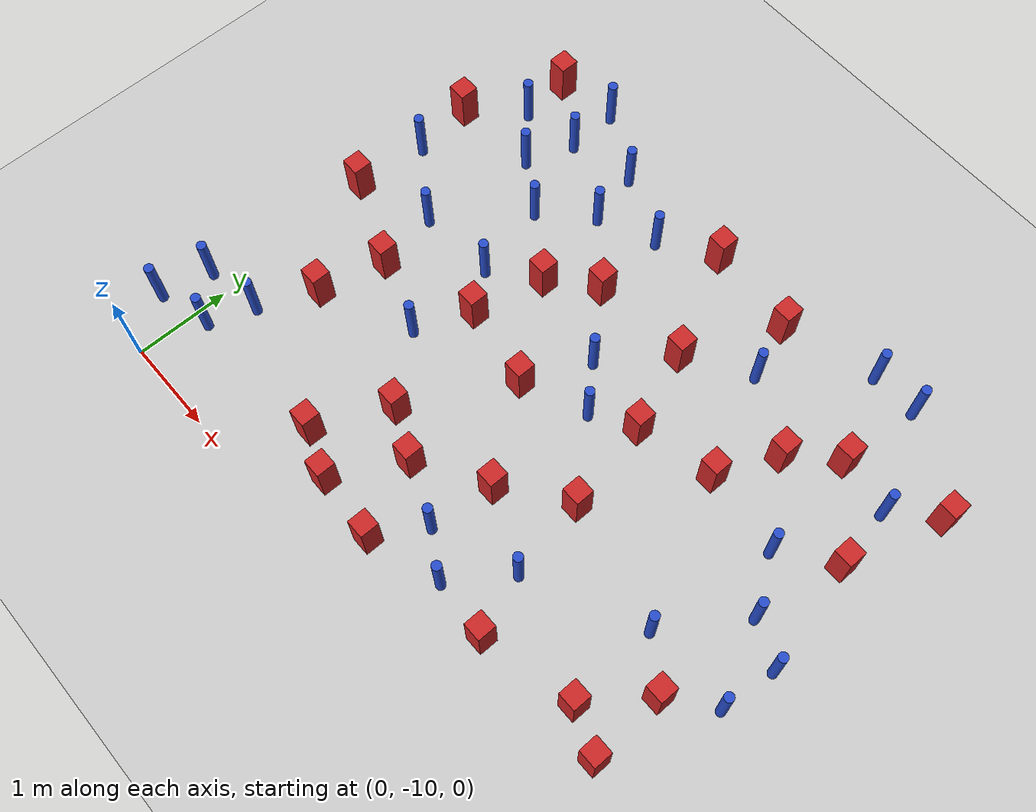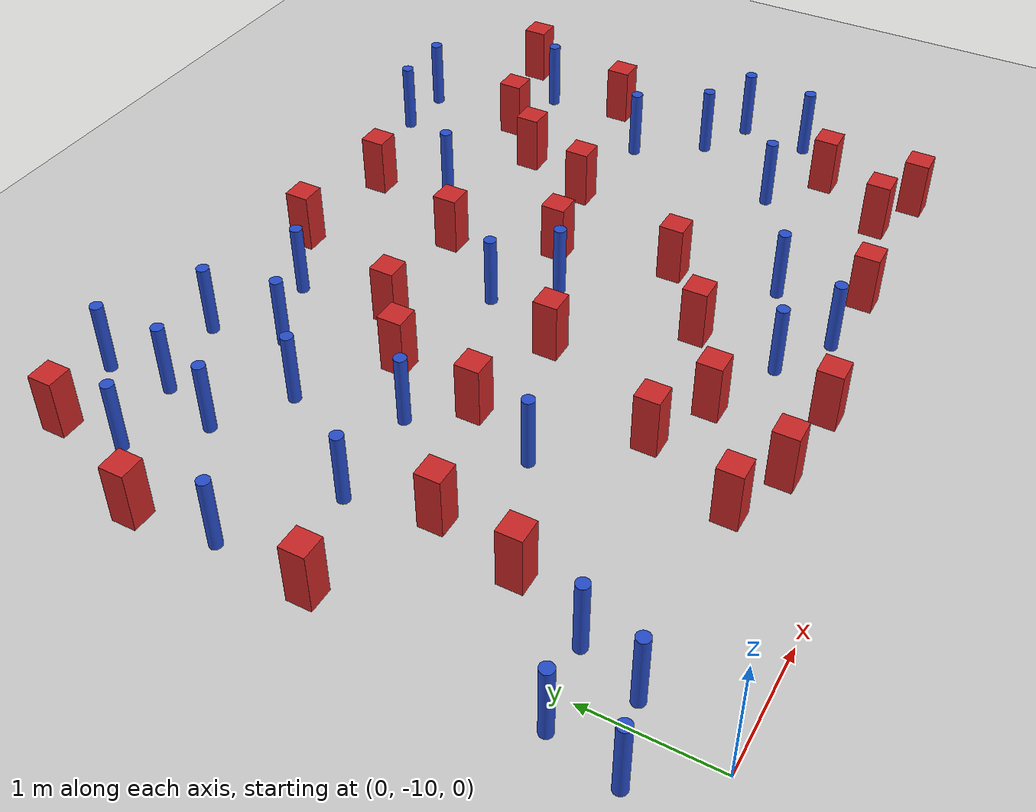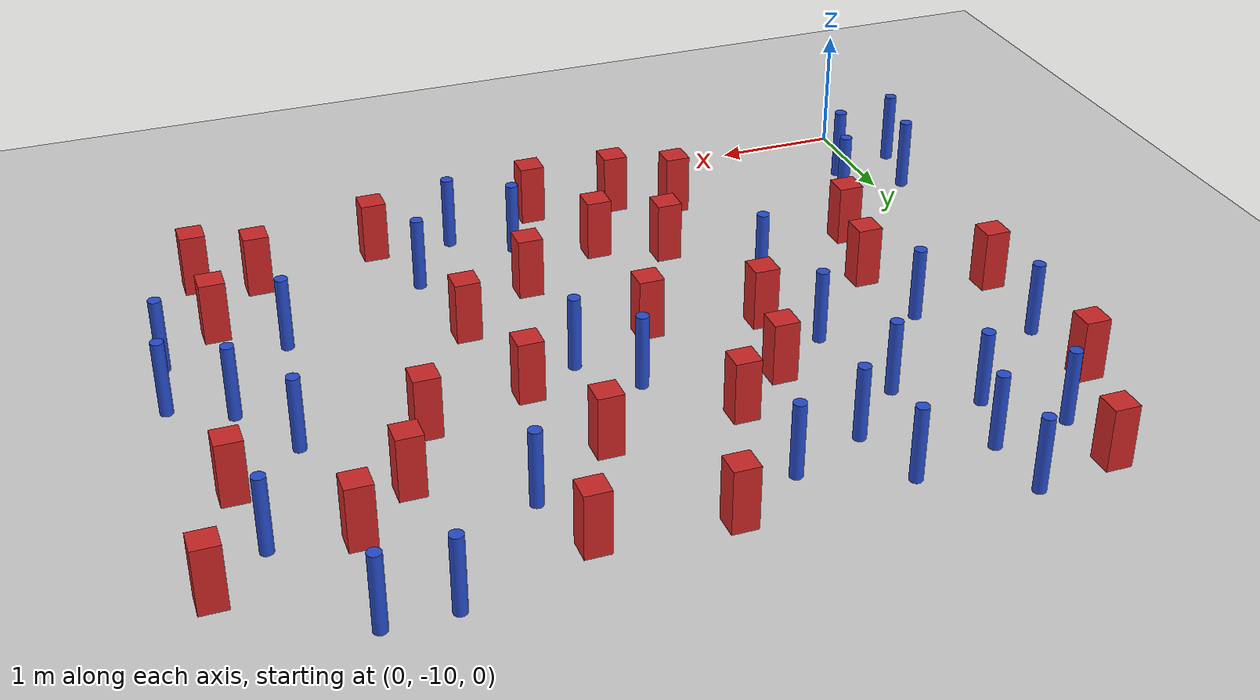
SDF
<sdf version="1.6">
 <world name="default">
  <model name="ground_plane">
   <static>1</static>
   <link name="link">
    <collision name="collision">
     <geometry><plane><normal>0 0 1</normal><size>100 100</size></plane></geometry>
     <surface><friction><ode><mu>100</mu><mu2>50</mu2></ode></friction></surface>
    </collision>
    <visual name="visual">
     <cast_shadows>0</cast_shadows>
     <geometry><plane><normal>0 0 1</normal><size>100 100</size></plane></geometry>
     <material>
      <ambient>1.0 1.0 1.0 1.0</ambient>
      <diffuse>0.8 0.8 0.8 1.0</diffuse>
      <specular>0.01 0.01 0.01 1.000000</specular>
     </material>
    </visual>
   </link>
  </model>
  <model name="pole_obstacle1">
   <static>true</static>
   <pose>5.36775499733 -8.12371053254 7.38925637345e-09 -8.471706928e-08 1.24976765081e-08 -1.74513093015e-07</pose>
   <link name="link">
    <pose>0 0 0.3 0 -0 0</pose>
    <inertial>
     <mass>1</mass>
     <inertia><ixx>0.145833</ixx><ixy>0</ixy><ixz>0</ixz><iyy>0.145833</iyy><iyz>0</iyz><izz>0.125</izz></inertia>
    </inertial>
    <collision name="collision">
     <geometry><cylinder><radius>0.05</radius><length>.6</length></cylinder></geometry>
    </collision>
    <visual name="visual">
     <geometry><cylinder><radius>0.05</radius><length>.6</length></cylinder></geometry>
     <material>
      <script><name>Gazebo/Blue</name><uri>file://media/materials/scripts/gazebo.material</uri></script>
     </material>
    </visual>
   </link>
  </model>
  <model name="square_post_obstacle7">
   <static>true</static>
   <pose>3.40714481329 -8.30700948743 1.91545236811e-07 -7.35059704564e-06 1.12565212e-07 2.39332434364e-05</pose>
   <link name="link">
    <pose>0 0 0.25 0 -0 0</pose>
    <inertial>
     <mass>100</mass>
     <inertia>
      <ixx>0.166667</ixx>
      <ixy>0</ixy>
      <ixz>0</ixz>
      <iyy>0.166667</iyy>
      <iyz>0</iyz>
      <izz>0.166667</izz>
     </inertia>
    </inertial>
    <collision name="collision"><geometry><box><size>.2 .2 .5</size></box></geometry></collision>
    <visual name="visual">
     <geometry><box><size>.2 .2 .5</size></box></geometry>
     <material>
      <script><name>Gazebo/Red</name><uri>file://media/materials/scripts/gazebo.material</uri></script>
     </material>
    </visual>
   </link>
  </model>
  <model name="square_post_obstacle18">
   <static>true</static>
   <pose>5.84780153135 -8.47413504067 1.91545236811e-07 -7.35059704564e-06 1.12565212e-07 2.39332434364e-05</pose>
   <link name="link">
    <pose>0 0 0.25 0 -0 0</pose>
    <inertial>
     <mass>100</mass>
     <inertia>
      <ixx>0.166667</ixx>
      <ixy>0</ixy>
      <ixz>0</ixz>
      <iyy>0.166667</iyy>
      <iyz>0</iyz>
      <izz>0.166667</izz>
     </inertia>
    </inertial>
    <collision name="collision"><geometry><box><size>.2 .2 .5</size></box></geometry></collision>
    <visual name="visual">
     <geometry><box><size>.2 .2 .5</size></box></geometry>
     <material>
      <script><name>Gazebo/Red</name><uri>file://media/materials/scripts/gazebo.material</uri></script>
     </material>
    </visual>
   </link>
  </model>
  <model name="square_post_obstacle22">
   <static>true</static>
   <pose>4.66731073279 -6.67754079063 1.91545236811e-07 -7.35059704564e-06 1.12565212e-07 2.39332434364e-05</pose>
   <link name="link">
    <pose>0 0 0.25 0 -0 0</pose>
    <inertial>
     <mass>100</mass>
     <inertia>
      <ixx>0.166667</ixx>
      <ixy>0</ixy>
      <ixz>0</ixz>
      <iyy>0.166667</iyy>
      <iyz>0</iyz>
      <izz>0.166667</izz>
     </inertia>
    </inertial>
    <collision name="collision"><geometry><box><size>.2 .2 .5</size></box></geometry></collision>
    <visual name="visual">
     <geometry><box><size>.2 .2 .5</size></box></geometry>
     <material>
      <script><name>Gazebo/Red</name><uri>file://media/materials/scripts/gazebo.material</uri></script>
     </material>
    </visual>
   </link>
  </model>
  <model name="square_post_obstacle23">
   <static>true</static>
   <pose>-0.080894684158 -7.16599762744 1.91545236811e-07 -7.35059704564e-06 1.12565212e-07 2.39332434364e-05</pose>
   <link name="link">
    <pose>0 0 0.25 0 -0 0</pose>
    <inertial>
     <mass>100</mass>
     <inertia>
      <ixx>0.166667</ixx>
      <ixy>0</ixy>
      <ixz>0</ixz>
      <iyy>0.166667</iyy>
      <iyz>0</iyz>
      <izz>0.166667</izz>
     </inertia>
    </inertial>
    <collision name="collision"><geometry><box><size>.2 .2 .5</size></box></geometry></collision>
    <visual name="visual">
     <geometry><box><size>.2 .2 .5</size></box></geometry>
     <material>
      <script><name>Gazebo/Red</name><uri>file://media/materials/scripts/gazebo.material</uri></script>
     </material>
    </visual>
   </link>
  </model>
  <model name="pole_obstacle30">
   <static>true</static>
   <pose>3.03689051538 -6.71455174014 7.38925637345e-09 -8.47170692798e-08 1.24976765033e-08 -1.74513093019e-07</pose>
   <link name="link">
    <pose>0 0 0.3 0 -0 0</pose>
    <inertial>
     <mass>1</mass>
     <inertia><ixx>0.145833</ixx><ixy>0</ixy><ixz>0</ixz><iyy>0.145833</iyy><iyz>0</iyz><izz>0.125</izz></inertia>
    </inertial>
    <collision name="collision">
     <geometry><cylinder><radius>0.05</radius><length>.6</length></cylinder></geometry>
    </collision>
    <visual name="visual">
     <geometry><cylinder><radius>0.05</radius><length>.6</length></cylinder></geometry>
     <material>
      <script><name>Gazebo/Blue</name><uri>file://media/materials/scripts/gazebo.material</uri></script>
     </material>
    </visual>
   </link>
  </model>
  <model name="pole_obstacle31">
   <static>true</static>
   <pose>3.32027610133 -8.9861926422 7.38925637345e-09 -8.47170692793e-08 1.24976764408e-08 -1.74513093041e-07</pose>
   <link name="link">
    <pose>0 0 0.3 0 -0 0</pose>
    <inertial>
     <mass>1</mass>
     <inertia><ixx>0.145833</ixx><ixy>0</ixy><ixz>0</ixz><iyy>0.145833</iyy><iyz>0</iyz><izz>0.125</izz></inertia>
    </inertial>
    <collision name="collision">
     <geometry><cylinder><radius>0.05</radius><length>.6</length></cylinder></geometry>
    </collision>
    <visual name="visual">
     <geometry><cylinder><radius>0.05</radius><length>.6</length></cylinder></geometry>
     <material>
      <script><name>Gazebo/Blue</name><uri>file://media/materials/scripts/gazebo.material</uri></script>
     </material>
    </visual>
   </link>
  </model>
  <model name="pole_obstacle34">
   <static>true</static>
   <pose>-0.244311666681 -8.94937711513 7.38925637345e-09 -8.47170692796e-08 1.24976764767e-08 -1.74513093034e-07</pose>
   <link name="link">
    <pose>0 0 0.3 0 -0 0</pose>
    <inertial>
     <mass>1</mass>
     <inertia><ixx>0.145833</ixx><ixy>0</ixy><ixz>0</ixz><iyy>0.145833</iyy><iyz>0</iyz><izz>0.125</izz></inertia>
    </inertial>
    <collision name="collision">
     <geometry><cylinder><radius>0.05</radius><length>.6</length></cylinder></geometry>
    </collision>
    <visual name="visual">
     <geometry><cylinder><radius>0.05</radius><length>.6</length></cylinder></geometry>
     <material>
      <script><name>Gazebo/Blue</name><uri>file://media/materials/scripts/gazebo.material</uri></script>
     </material>
    </visual>
   </link>
  </model>
  <model name="square_post_obstacle45">
   <static>true</static>
   <pose>3.01138546882 -4.96971279215 1.91545236811e-07 -7.35059704564e-06 1.12565212e-07 2.39332434364e-05</pose>
   <link name="link">
    <pose>0 0 0.25 0 -0 0</pose>
    <inertial>
     <mass>100</mass>
     <inertia>
      <ixx>0.166667</ixx>
      <ixy>0</ixy>
      <ixz>0</ixz>
      <iyy>0.166667</iyy>
      <iyz>0</iyz>
      <izz>0.166667</izz>
     </inertia>
    </inertial>
    <collision name="collision"><geometry><box><size>.2 .2 .5</size></box></geometry></collision>
    <visual name="visual">
     <geometry><box><size>.2 .2 .5</size></box></geometry>
     <material>
      <script><name>Gazebo/Red</name><uri>file://media/materials/scripts/gazebo.material</uri></script>
     </material>
    </visual>
   </link>
  </model>
  <model name="square_post_obstacle47">
   <static>true</static>
   <pose>2.50168336218 -6.11990221187 1.91545236811e-07 -7.35059704564e-06 1.12565212e-07 2.39332434364e-05</pose>
   <link name="link">
    <pose>0 0 0.25 0 -0 0</pose>
    <inertial>
     <mass>100</mass>
     <inertia>
      <ixx>0.166667</ixx>
      <ixy>0</ixy>
      <ixz>0</ixz>
      <iyy>0.166667</iyy>
      <iyz>0</iyz>
      <izz>0.166667</izz>
     </inertia>
    </inertial>
    <collision name="collision"><geometry><box><size>.2 .2 .5</size></box></geometry></collision>
    <visual name="visual">
     <geometry><box><size>.2 .2 .5</size></box></geometry>
     <material>
      <script><name>Gazebo/Red</name><uri>file://media/materials/scripts/gazebo.material</uri></script>
     </material>
    </visual>
   </link>
  </model>
  <model name="pole_obstacle48">
   <static>true</static>
   <pose>1.36237334489 -6.02095012105 7.38925637345e-09 -8.47170692799e-08 1.24976765033e-08 -1.74513093018e-07</pose>
   <link name="link">
    <pose>0 0 0.3 0 -0 0</pose>
    <inertial>
     <mass>1</mass>
     <inertia><ixx>0.145833</ixx><ixy>0</ixy><ixz>0</ixz><iyy>0.145833</iyy><iyz>0</iyz><izz>0.125</izz></inertia>
    </inertial>
    <collision name="collision">
     <geometry><cylinder><radius>0.05</radius><length>.6</length></cylinder></geometry>
    </collision>
    <visual name="visual">
     <geometry><cylinder><radius>0.05</radius><length>.6</length></cylinder></geometry>
     <material>
      <script><name>Gazebo/Blue</name><uri>file://media/materials/scripts/gazebo.material</uri></script>
     </material>
    </visual>
   </link>
  </model>
  <model name="square_post_obstacle57">
   <static>true</static>
   <pose>2.29659194714 -9.43702779649 1.91545236811e-07 -7.35059704564e-06 1.12565212e-07 2.39332434364e-05</pose>
   <link name="link">
    <pose>0 0 0.25 0 -0 0</pose>
    <inertial>
     <mass>100</mass>
     <inertia>
      <ixx>0.166667</ixx>
      <ixy>0</ixy>
      <ixz>0</ixz>
      <iyy>0.166667</iyy>
      <iyz>0</iyz>
      <izz>0.166667</izz>
     </inertia>
    </inertial>
    <collision name="collision"><geometry><box><size>.2 .2 .5</size></box></geometry></collision>
    <visual name="visual">
     <geometry><box><size>.2 .2 .5</size></box></geometry>
     <material>
      <script><name>Gazebo/Red</name><uri>file://media/materials/scripts/gazebo.material</uri></script>
     </material>
    </visual>
   </link>
  </model>
  <model name="pole_obstacle57">
   <static>true</static>
   <pose>5.54487379821 -6.78339901866 7.38925637345e-09 -8.47170692796e-08 1.24976764786e-08 -1.74513093032e-07</pose>
   <link name="link">
    <pose>0 0 0.3 0 -0 0</pose>
    <inertial>
     <mass>1</mass>
     <inertia><ixx>0.145833</ixx><ixy>0</ixy><ixz>0</ixz><iyy>0.145833</iyy><iyz>0</iyz><izz>0.125</izz></inertia>
    </inertial>
    <collision name="collision">
     <geometry><cylinder><radius>0.05</radius><length>.6</length></cylinder></geometry>
    </collision>
    <visual name="visual">
     <geometry><cylinder><radius>0.05</radius><length>.6</length></cylinder></geometry>
     <material>
      <script><name>Gazebo/Blue</name><uri>file://media/materials/scripts/gazebo.material</uri></script>
     </material>
    </visual>
   </link>
  </model>
  <model name="square_post_obstacle61">
   <static>true</static>
   <pose>1.86044389645 -7.24844562059 1.91545236811e-07 -7.35059704564e-06 1.12565212e-07 2.39332434364e-05</pose>
   <link name="link">
    <pose>0 0 0.25 0 -0 0</pose>
    <inertial>
     <mass>100</mass>
     <inertia>
      <ixx>0.166667</ixx>
      <ixy>0</ixy>
      <ixz>0</ixz>
      <iyy>0.166667</iyy>
      <iyz>0</iyz>
      <izz>0.166667</izz>
     </inertia>
    </inertial>
    <collision name="collision"><geometry><box><size>.2 .2 .5</size></box></geometry></collision>
    <visual name="visual">
     <geometry><box><size>.2 .2 .5</size></box></geometry>
     <material>
      <script><name>Gazebo/Red</name><uri>file://media/materials/scripts/gazebo.material</uri></script>
     </material>
    </visual>
   </link>
  </model>
  <model name="square_post_obstacle73">
   <static>true</static>
   <pose>4.42015701009 -9.30122885397 1.91545236811e-07 -7.35059704564e-06 1.12565212e-07 2.39332434364e-05</pose>
   <link name="link">
    <pose>0 0 0.25 0 -0 0</pose>
    <inertial>
     <mass>100</mass>
     <inertia>
      <ixx>0.166667</ixx>
      <ixy>0</ixy>
      <ixz>0</ixz>
      <iyy>0.166667</iyy>
      <iyz>0</iyz>
      <izz>0.166667</izz>
     </inertia>
    </inertial>
    <collision name="collision"><geometry><box><size>.2 .2 .5</size></box></geometry></collision>
    <visual name="visual">
     <geometry><box><size>.2 .2 .5</size></box></geometry>
     <material>
      <script><name>Gazebo/Red</name><uri>file://media/materials/scripts/gazebo.material</uri></script>
     </material>
    </visual>
   </link>
  </model>
  <model name="square_post_obstacle81">
   <static>true</static>
   <pose>0.343780951815 -4.73011041613 1.91545236811e-07 -7.35059704564e-06 1.12565212e-07 2.39332434364e-05</pose>
   <link name="link">
    <pose>0 0 0.25 0 -0 0</pose>
    <inertial>
     <mass>100</mass>
     <inertia>
      <ixx>0.166667</ixx>
      <ixy>0</ixy>
      <ixz>0</ixz>
      <iyy>0.166667</iyy>
      <iyz>0</iyz>
      <izz>0.166667</izz>
     </inertia>
    </inertial>
    <collision name="collision"><geometry><box><size>.2 .2 .5</size></box></geometry></collision>
    <visual name="visual">
     <geometry><box><size>.2 .2 .5</size></box></geometry>
     <material>
      <script><name>Gazebo/Red</name><uri>file://media/materials/scripts/gazebo.material</uri></script>
     </material>
    </visual>
   </link>
  </model>
  <model name="pole_obstacle88">
   <static>true</static>
   <pose>3.78747226909 -9.26308492604 7.38925637345e-09 -8.47170692793e-08 1.24976764408e-08 -1.74513093041e-07</pose>
   <link name="link">
    <pose>0 0 0.3 0 -0 0</pose>
    <inertial>
     <mass>1</mass>
     <inertia><ixx>0.145833</ixx><ixy>0</ixy><ixz>0</ixz><iyy>0.145833</iyy><iyz>0</iyz><izz>0.125</izz></inertia>
    </inertial>
    <collision name="collision">
     <geometry><cylinder><radius>0.05</radius><length>.6</length></cylinder></geometry>
    </collision>
    <visual name="visual">
     <geometry><cylinder><radius>0.05</radius><length>.6</length></cylinder></geometry>
     <material>
      <script><name>Gazebo/Blue</name><uri>file://media/materials/scripts/gazebo.material</uri></script>
     </material>
    </visual>
   </link>
  </model>
  <model name="pole_obstacle96">
   <static>true</static>
   <pose>2.44443993079 -5.31952018741 7.38925637345e-09 -8.47170692798e-08 1.24976765033e-08 -1.74513093019e-07</pose>
   <link name="link">
    <pose>0 0 0.3 0 -0 0</pose>
    <inertial>
     <mass>1</mass>
     <inertia><ixx>0.145833</ixx><ixy>0</ixy><ixz>0</ixz><iyy>0.145833</iyy><iyz>0</iyz><izz>0.125</izz></inertia>
    </inertial>
    <collision name="collision">
     <geometry><cylinder><radius>0.05</radius><length>.6</length></cylinder></geometry>
    </collision>
    <visual name="visual">
     <geometry><cylinder><radius>0.05</radius><length>.6</length></cylinder></geometry>
     <material>
      <script><name>Gazebo/Blue</name><uri>file://media/materials/scripts/gazebo.material</uri></script>
     </material>
    </visual>
   </link>
  </model>
  <model name="pole_obstacle97">
   <static>true</static>
   <pose>1.54924843763 -6.84767476322 7.38925637345e-09 -8.47170692799e-08 1.24976765033e-08 -1.74513093018e-07</pose>
   <link name="link">
    <pose>0 0 0.3 0 -0 0</pose>
    <inertial>
     <mass>1</mass>
     <inertia><ixx>0.145833</ixx><ixy>0</ixy><ixz>0</ixz><iyy>0.145833</iyy><iyz>0</iyz><izz>0.125</izz></inertia>
    </inertial>
    <collision name="collision">
     <geometry><cylinder><radius>0.05</radius><length>.6</length></cylinder></geometry>
    </collision>
    <visual name="visual">
     <geometry><cylinder><radius>0.05</radius><length>.6</length></cylinder></geometry>
     <material>
      <script><name>Gazebo/Blue</name><uri>file://media/materials/scripts/gazebo.material</uri></script>
     </material>
    </visual>
   </link>
  </model>
  <model name="square_post_obstacle88">
   <static>true</static>
   <pose>5.38121356548 -5.63460600465 1.91545236811e-07 -7.35059704564e-06 1.12565212e-07 2.39332434364e-05</pose>
   <link name="link">
    <pose>0 0 0.25 0 -0 0</pose>
    <inertial>
     <mass>100</mass>
     <inertia>
      <ixx>0.166667</ixx>
      <ixy>0</ixy>
      <ixz>0</ixz>
      <iyy>0.166667</iyy>
      <iyz>0</iyz>
      <izz>0.166667</izz>
     </inertia>
    </inertial>
    <collision name="collision"><geometry><box><size>.2 .2 .5</size></box></geometry></collision>
    <visual name="visual">
     <geometry><box><size>.2 .2 .5</size></box></geometry>
     <material>
      <script><name>Gazebo/Red</name><uri>file://media/materials/scripts/gazebo.material</uri></script>
     </material>
    </visual>
   </link>
  </model>
  <model name="square_post_obstacle89">
   <static>true</static>
   <pose>-0.0881539097335 -5.75316979867 1.91545236811e-07 -7.35059704564e-06 1.12565212e-07 2.39332434364e-05</pose>
   <link name="link">
    <pose>0 0 0.25 0 -0 0</pose>
    <inertial>
     <mass>100</mass>
     <inertia>
      <ixx>0.166667</ixx>
      <ixy>0</ixy>
      <ixz>0</ixz>
      <iyy>0.166667</iyy>
      <iyz>0</iyz>
      <izz>0.166667</izz>
     </inertia>
    </inertial>
    <collision name="collision"><geometry><box><size>.2 .2 .5</size></box></geometry></collision>
    <visual name="visual">
     <geometry><box><size>.2 .2 .5</size></box></geometry>
     <material>
      <script><name>Gazebo/Red</name><uri>file://media/materials/scripts/gazebo.material</uri></script>
     </material>
    </visual>
   </link>
  </model>
  <model name="pole_obstacle102">
   <static>true</static>
   <pose>0.373557010605 -5.25192234063 7.38925637345e-09 -8.471706928e-08 1.24976765079e-08 -1.74513093015e-07</pose>
   <link name="link">
    <pose>0 0 0.3 0 -0 0</pose>
    <inertial>
     <mass>1</mass>
     <inertia><ixx>0.145833</ixx><ixy>0</ixy><ixz>0</ixz><iyy>0.145833</iyy><iyz>0</iyz><izz>0.125</izz></inertia>
    </inertial>
    <collision name="collision">
     <geometry><cylinder><radius>0.05</radius><length>.6</length></cylinder></geometry>
    </collision>
    <visual name="visual">
     <geometry><cylinder><radius>0.05</radius><length>.6</length></cylinder></geometry>
     <material>
      <script><name>Gazebo/Blue</name><uri>file://media/materials/scripts/gazebo.material</uri></script>
     </material>
    </visual>
   </link>
  </model>
  <model name="pole_obstacle103">
   <static>true</static>
   <pose>0.980301580026 -4.61213365854 7.38925637345e-09 -8.471706928e-08 1.24976765144e-08 -1.74513093012e-07</pose>
   <link name="link">
    <pose>0 0 0.3 0 -0 0</pose>
    <inertial>
     <mass>1</mass>
     <inertia><ixx>0.145833</ixx><ixy>0</ixy><ixz>0</ixz><iyy>0.145833</iyy><iyz>0</iyz><izz>0.125</izz></inertia>
    </inertial>
    <collision name="collision">
     <geometry><cylinder><radius>0.05</radius><length>.6</length></cylinder></geometry>
    </collision>
    <visual name="visual">
     <geometry><cylinder><radius>0.05</radius><length>.6</length></cylinder></geometry>
     <material>
      <script><name>Gazebo/Blue</name><uri>file://media/materials/scripts/gazebo.material</uri></script>
     </material>
    </visual>
   </link>
  </model>
  <model name="pole_obstacle104">
   <static>true</static>
   <pose>5.96876698595 -5.73648685278 7.38925637345e-09 -8.47170692796e-08 1.24976764786e-08 -1.74513093032e-07</pose>
   <link name="link">
    <pose>0 0 0.3 0 -0 0</pose>
    <inertial>
     <mass>1</mass>
     <inertia><ixx>0.145833</ixx><ixy>0</ixy><ixz>0</ixz><iyy>0.145833</iyy><iyz>0</iyz><izz>0.125</izz></inertia>
    </inertial>
    <collision name="collision">
     <geometry><cylinder><radius>0.05</radius><length>.6</length></cylinder></geometry>
    </collision>
    <visual name="visual">
     <geometry><cylinder><radius>0.05</radius><length>.6</length></cylinder></geometry>
     <material>
      <script><name>Gazebo/Blue</name><uri>file://media/materials/scripts/gazebo.material</uri></script>
     </material>
    </visual>
   </link>
  </model>
  <model name="square_post_obstacle92">
   <static>true</static>
   <pose>2.17199319044 -8.48588359397 1.91545236811e-07 -7.35059704564e-06 1.12565212e-07 2.39332434364e-05</pose>
   <link name="link">
    <pose>0 0 0.25 0 -0 0</pose>
    <inertial>
     <mass>100</mass>
     <inertia>
      <ixx>0.166667</ixx>
      <ixy>0</ixy>
      <ixz>0</ixz>
      <iyy>0.166667</iyy>
      <iyz>0</iyz>
      <izz>0.166667</izz>
     </inertia>
    </inertial>
    <collision name="collision"><geometry><box><size>.2 .2 .5</size></box></geometry></collision>
    <visual name="visual">
     <geometry><box><size>.2 .2 .5</size></box></geometry>
     <material>
      <script><name>Gazebo/Red</name><uri>file://media/materials/scripts/gazebo.material</uri></script>
     </material>
    </visual>
   </link>
  </model>
  <model name="square_post_obstacle95">
   <static>true</static>
   <pose>2.69306368203 -8.72543098649 1.91545236811e-07 -7.35059704564e-06 1.12565212e-07 2.39332434364e-05</pose>
   <link name="link">
    <pose>0 0 0.25 0 -0 0</pose>
    <inertial>
     <mass>100</mass>
     <inertia>
      <ixx>0.166667</ixx>
      <ixy>0</ixy>
      <ixz>0</ixz>
      <iyy>0.166667</iyy>
      <iyz>0</iyz>
      <izz>0.166667</izz>
     </inertia>
    </inertial>
    <collision name="collision"><geometry><box><size>.2 .2 .5</size></box></geometry></collision>
    <visual name="visual">
     <geometry><box><size>.2 .2 .5</size></box></geometry>
     <material>
      <script><name>Gazebo/Red</name><uri>file://media/materials/scripts/gazebo.material</uri></script>
     </material>
    </visual>
   </link>
  </model>
  <model name="square_post_obstacle102">
   <static>true</static>
   <pose>5.40906005459 -9.07649908637 1.91545236811e-07 -7.35059704564e-06 1.12565212e-07 2.39332434364e-05</pose>
   <link name="link">
    <pose>0 0 0.25 0 -0 0</pose>
    <inertial>
     <mass>100</mass>
     <inertia>
      <ixx>0.166667</ixx>
      <ixy>0</ixy>
      <ixz>0</ixz>
      <iyy>0.166667</iyy>
      <iyz>0</iyz>
      <izz>0.166667</izz>
     </inertia>
    </inertial>
    <collision name="collision"><geometry><box><size>.2 .2 .5</size></box></geometry></collision>
    <visual name="visual">
     <geometry><box><size>.2 .2 .5</size></box></geometry>
     <material>
      <script><name>Gazebo/Red</name><uri>file://media/materials/scripts/gazebo.material</uri></script>
     </material>
    </visual>
   </link>
  </model>
  <model name="pole_obstacle136">
   <static>true</static>
   <pose>4.19274055083 -5.62049693057 7.38925637345e-09 -8.47170692796e-08 1.24976764786e-08 -1.74513093032e-07</pose>
   <link name="link">
    <pose>0 0 0.3 0 -0 0</pose>
    <inertial>
     <mass>1</mass>
     <inertia><ixx>0.145833</ixx><ixy>0</ixy><ixz>0</ixz><iyy>0.145833</iyy><iyz>0</iyz><izz>0.125</izz></inertia>
    </inertial>
    <collision name="collision">
     <geometry><cylinder><radius>0.05</radius><length>.6</length></cylinder></geometry>
    </collision>
    <visual name="visual">
     <geometry><cylinder><radius>0.05</radius><length>.6</length></cylinder></geometry>
     <material>
      <script><name>Gazebo/Blue</name><uri>file://media/materials/scripts/gazebo.material</uri></script>
     </material>
    </visual>
   </link>
  </model>
  <model name="square_post_obstacle135">
   <static>true</static>
   <pose>0.83592477965 -7.56117926556 1.91545236811e-07 -7.35059704564e-06 1.12565212e-07 2.39332434364e-05</pose>
   <link name="link">
    <pose>0 0 0.25 0 -0 0</pose>
    <inertial>
     <mass>100</mass>
     <inertia>
      <ixx>0.166667</ixx>
      <ixy>0</ixy>
      <ixz>0</ixz>
      <iyy>0.166667</iyy>
      <iyz>0</iyz>
      <izz>0.166667</izz>
     </inertia>
    </inertial>
    <collision name="collision"><geometry><box><size>.2 .2 .5</size></box></geometry></collision>
    <visual name="visual">
     <geometry><box><size>.2 .2 .5</size></box></geometry>
     <material>
      <script><name>Gazebo/Red</name><uri>file://media/materials/scripts/gazebo.material</uri></script>
     </material>
    </visual>
   </link>
  </model>
  <model name="pole_obstacle151">
   <static>true</static>
   <pose>0.378483080115 -8.85529947259 7.38925637345e-09 -8.47170692796e-08 1.24976764724e-08 -1.74513093036e-07</pose>
   <link name="link">
    <pose>0 0 0.3 0 -0 0</pose>
    <inertial>
     <mass>1</mass>
     <inertia><ixx>0.145833</ixx><ixy>0</ixy><ixz>0</ixz><iyy>0.145833</iyy><iyz>0</iyz><izz>0.125</izz></inertia>
    </inertial>
    <collision name="collision">
     <geometry><cylinder><radius>0.05</radius><length>.6</length></cylinder></geometry>
    </collision>
    <visual name="visual">
     <geometry><cylinder><radius>0.05</radius><length>.6</length></cylinder></geometry>
     <material>
      <script><name>Gazebo/Blue</name><uri>file://media/materials/scripts/gazebo.material</uri></script>
     </material>
    </visual>
   </link>
  </model>
  <model name="pole_obstacle152">
   <static>true</static>
   <pose>1.0019412738 -5.15727224589 7.38925637345e-09 -8.47170692799e-08 1.24976765021e-08 -1.74513093019e-07</pose>
   <link name="link">
    <pose>0 0 0.3 0 -0 0</pose>
    <inertial>
     <mass>1</mass>
     <inertia><ixx>0.145833</ixx><ixy>0</ixy><ixz>0</ixz><iyy>0.145833</iyy><iyz>0</iyz><izz>0.125</izz></inertia>
    </inertial>
    <collision name="collision">
     <geometry><cylinder><radius>0.05</radius><length>.6</length></cylinder></geometry>
    </collision>
    <visual name="visual">
     <geometry><cylinder><radius>0.05</radius><length>.6</length></cylinder></geometry>
     <material>
      <script><name>Gazebo/Blue</name><uri>file://media/materials/scripts/gazebo.material</uri></script>
     </material>
    </visual>
   </link>
  </model>
  <model name="pole_obstacle153">
   <static>true</static>
   <pose>4.96267939551 -4.74884118193 7.38925637345e-09 -8.47170692796e-08 1.24976764786e-08 -1.74513093032e-07</pose>
   <link name="link">
    <pose>0 0 0.3 0 -0 0</pose>
    <inertial>
     <mass>1</mass>
     <inertia><ixx>0.145833</ixx><ixy>0</ixy><ixz>0</ixz><iyy>0.145833</iyy><iyz>0</iyz><izz>0.125</izz></inertia>
    </inertial>
    <collision name="collision">
     <geometry><cylinder><radius>0.05</radius><length>.6</length></cylinder></geometry>
    </collision>
    <visual name="visual">
     <geometry><cylinder><radius>0.05</radius><length>.6</length></cylinder></geometry>
     <material>
      <script><name>Gazebo/Blue</name><uri>file://media/materials/scripts/gazebo.material</uri></script>
     </material>
    </visual>
   </link>
  </model>
  <model name="square_post_obstacle146">
   <static>true</static>
   <pose>5.87521116605 -9.26033287279 1.91545236811e-07 -7.35059704564e-06 1.12565212e-07 2.39332434364e-05</pose>
   <link name="link">
    <pose>0 0 0.25 0 -0 0</pose>
    <inertial>
     <mass>100</mass>
     <inertia>
      <ixx>0.166667</ixx>
      <ixy>0</ixy>
      <ixz>0</ixz>
      <iyy>0.166667</iyy>
      <iyz>0</iyz>
      <izz>0.166667</izz>
     </inertia>
    </inertial>
    <collision name="collision"><geometry><box><size>.2 .2 .5</size></box></geometry></collision>
    <visual name="visual">
     <geometry><box><size>.2 .2 .5</size></box></geometry>
     <material>
      <script><name>Gazebo/Red</name><uri>file://media/materials/scripts/gazebo.material</uri></script>
     </material>
    </visual>
   </link>
  </model>
  <model name="square_post_obstacle148">
   <static>true</static>
   <pose>3.85545705787 -6.87658463102 1.91545236811e-07 -7.35059704564e-06 1.12565212e-07 2.39332434364e-05</pose>
   <link name="link">
    <pose>0 0 0.25 0 -0 0</pose>
    <inertial>
     <mass>100</mass>
     <inertia>
      <ixx>0.166667</ixx>
      <ixy>0</ixy>
      <ixz>0</ixz>
      <iyy>0.166667</iyy>
      <iyz>0</iyz>
      <izz>0.166667</izz>
     </inertia>
    </inertial>
    <collision name="collision"><geometry><box><size>.2 .2 .5</size></box></geometry></collision>
    <visual name="visual">
     <geometry><box><size>.2 .2 .5</size></box></geometry>
     <material>
      <script><name>Gazebo/Red</name><uri>file://media/materials/scripts/gazebo.material</uri></script>
     </material>
    </visual>
   </link>
  </model>
  <model name="pole_obstacle160">
   <static>true</static>
   <pose>3.41708653888 -7.12184447343 7.38925637345e-09 -8.47170692798e-08 1.24976765033e-08 -1.74513093019e-07</pose>
   <link name="link">
    <pose>0 0 0.3 0 -0 0</pose>
    <inertial>
     <mass>1</mass>
     <inertia><ixx>0.145833</ixx><ixy>0</ixy><ixz>0</ixz><iyy>0.145833</iyy><iyz>0</iyz><izz>0.125</izz></inertia>
    </inertial>
    <collision name="collision">
     <geometry><cylinder><radius>0.05</radius><length>.6</length></cylinder></geometry>
    </collision>
    <visual name="visual">
     <geometry><cylinder><radius>0.05</radius><length>.6</length></cylinder></geometry>
     <material>
      <script><name>Gazebo/Blue</name><uri>file://media/materials/scripts/gazebo.material</uri></script>
     </material>
    </visual>
   </link>
  </model>
  <model name="pole_obstacle162">
   <static>true</static>
   <pose>5.4631780673 -4.74949536961 7.38925637345e-09 -8.47170692796e-08 1.24976764786e-08 -1.74513093032e-07</pose>
   <link name="link">
    <pose>0 0 0.3 0 -0 0</pose>
    <inertial>
     <mass>1</mass>
     <inertia><ixx>0.145833</ixx><ixy>0</ixy><ixz>0</ixz><iyy>0.145833</iyy><iyz>0</iyz><izz>0.125</izz></inertia>
    </inertial>
    <collision name="collision">
     <geometry><cylinder><radius>0.05</radius><length>.6</length></cylinder></geometry>
    </collision>
    <visual name="visual">
     <geometry><cylinder><radius>0.05</radius><length>.6</length></cylinder></geometry>
     <material>
      <script><name>Gazebo/Blue</name><uri>file://media/materials/scripts/gazebo.material</uri></script>
     </material>
    </visual>
   </link>
  </model>
  <model name="square_post_obstacle157">
   <static>true</static>
   <pose>4.05006526174 -7.82933510831 1.91545236811e-07 -7.35059704564e-06 1.12565212e-07 2.39332434364e-05</pose>
   <link name="link">
    <pose>0 0 0.25 0 -0 0</pose>
    <inertial>
     <mass>100</mass>
     <inertia>
      <ixx>0.166667</ixx>
      <ixy>0</ixy>
      <ixz>0</ixz>
      <iyy>0.166667</iyy>
      <iyz>0</iyz>
      <izz>0.166667</izz>
     </inertia>
    </inertial>
    <collision name="collision"><geometry><box><size>.2 .2 .5</size></box></geometry></collision>
    <visual name="visual">
     <geometry><box><size>.2 .2 .5</size></box></geometry>
     <material>
      <script><name>Gazebo/Red</name><uri>file://media/materials/scripts/gazebo.material</uri></script>
     </material>
    </visual>
   </link>
  </model>
  <model name="square_post_obstacle159">
   <static>true</static>
   <pose>2.73927847752 -7.40027709407 1.91545236811e-07 -7.35059704564e-06 1.12565212e-07 2.39332434364e-05</pose>
   <link name="link">
    <pose>0 0 0.25 0 -0 0</pose>
    <inertial>
     <mass>100</mass>
     <inertia>
      <ixx>0.166667</ixx>
      <ixy>0</ixy>
      <ixz>0</ixz>
      <iyy>0.166667</iyy>
      <iyz>0</iyz>
      <izz>0.166667</izz>
     </inertia>
    </inertial>
    <collision name="collision"><geometry><box><size>.2 .2 .5</size></box></geometry></collision>
    <visual name="visual">
     <geometry><box><size>.2 .2 .5</size></box></geometry>
     <material>
      <script><name>Gazebo/Red</name><uri>file://media/materials/scripts/gazebo.material</uri></script>
     </material>
    </visual>
   </link>
  </model>
  <model name="pole_obstacle171">
   <static>true</static>
   <pose>1.84113557446 -5.57486394507 7.38925637345e-09 -8.47170692799e-08 1.24976765033e-08 -1.74513093018e-07</pose>
   <link name="link">
    <pose>0 0 0.3 0 -0 0</pose>
    <inertial>
     <mass>1</mass>
     <inertia><ixx>0.145833</ixx><ixy>0</ixy><ixz>0</ixz><iyy>0.145833</iyy><iyz>0</iyz><izz>0.125</izz></inertia>
    </inertial>
    <collision name="collision">
     <geometry><cylinder><radius>0.05</radius><length>.6</length></cylinder></geometry>
    </collision>
    <visual name="visual">
     <geometry><cylinder><radius>0.05</radius><length>.6</length></cylinder></geometry>
     <material>
      <script><name>Gazebo/Blue</name><uri>file://media/materials/scripts/gazebo.material</uri></script>
     </material>
    </visual>
   </link>
  </model>
  <model name="square_post_obstacle162">
   <static>true</static>
   <pose>0.660725322742 -8.25650838268 1.91545236811e-07 -7.35059704564e-06 1.12565212e-07 2.39332434364e-05</pose>
   <link name="link">
    <pose>0 0 0.25 0 -0 0</pose>
    <inertial>
     <mass>100</mass>
     <inertia>
      <ixx>0.166667</ixx>
      <ixy>0</ixy>
      <ixz>0</ixz>
      <iyy>0.166667</iyy>
      <iyz>0</iyz>
      <izz>0.166667</izz>
     </inertia>
    </inertial>
    <collision name="collision"><geometry><box><size>.2 .2 .5</size></box></geometry></collision>
    <visual name="visual">
     <geometry><box><size>.2 .2 .5</size></box></geometry>
     <material>
      <script><name>Gazebo/Red</name><uri>file://media/materials/scripts/gazebo.material</uri></script>
     </material>
    </visual>
   </link>
  </model>
  <model name="square_post_obstacle166">
   <static>true</static>
   <pose>4.94771733234 -6.04851892636 1.91545236811e-07 -7.35059704564e-06 1.12565212e-07 2.39332434364e-05</pose>
   <link name="link">
    <pose>0 0 0.25 0 -0 0</pose>
    <inertial>
     <mass>100</mass>
     <inertia>
      <ixx>0.166667</ixx>
      <ixy>0</ixy>
      <ixz>0</ixz>
      <iyy>0.166667</iyy>
      <iyz>0</iyz>
      <izz>0.166667</izz>
     </inertia>
    </inertial>
    <collision name="collision"><geometry><box><size>.2 .2 .5</size></box></geometry></collision>
    <visual name="visual">
     <geometry><box><size>.2 .2 .5</size></box></geometry>
     <material>
      <script><name>Gazebo/Red</name><uri>file://media/materials/scripts/gazebo.material</uri></script>
     </material>
    </visual>
   </link>
  </model>
  <model name="pole_obstacle181">
   <static>true</static>
   <pose>-0.0250827075404 -6.3937264522 7.38925637345e-09 -8.471706928e-08 1.24976765096e-08 -1.74513093016e-07</pose>
   <link name="link">
    <pose>0 0 0.3 0 -0 0</pose>
    <inertial>
     <mass>1</mass>
     <inertia><ixx>0.145833</ixx><ixy>0</ixy><ixz>0</ixz><iyy>0.145833</iyy><iyz>0</iyz><izz>0.125</izz></inertia>
    </inertial>
    <collision name="collision">
     <geometry><cylinder><radius>0.05</radius><length>.6</length></cylinder></geometry>
    </collision>
    <visual name="visual">
     <geometry><cylinder><radius>0.05</radius><length>.6</length></cylinder></geometry>
     <material>
      <script><name>Gazebo/Blue</name><uri>file://media/materials/scripts/gazebo.material</uri></script>
     </material>
    </visual>
   </link>
  </model>
  <model name="square_post_obstacle172">
   <static>true</static>
   <pose>6.07169594317 -6.39087651649 1.91545236811e-07 -7.35059704564e-06 1.12565212e-07 2.39332434364e-05</pose>
   <link name="link">
    <pose>0 0 0.25 0 -0 0</pose>
    <inertial>
     <mass>100</mass>
     <inertia>
      <ixx>0.166667</ixx>
      <ixy>0</ixy>
      <ixz>0</ixz>
      <iyy>0.166667</iyy>
      <iyz>0</iyz>
      <izz>0.166667</izz>
     </inertia>
    </inertial>
    <collision name="collision"><geometry><box><size>.2 .2 .5</size></box></geometry></collision>
    <visual name="visual">
     <geometry><box><size>.2 .2 .5</size></box></geometry>
     <material>
      <script><name>Gazebo/Red</name><uri>file://media/materials/scripts/gazebo.material</uri></script>
     </material>
    </visual>
   </link>
  </model>
  <model name="pole_obstacle184">
   <static>true</static>
   <pose>6.35026151482 -7.54557308217 7.38925637345e-09 -8.47170692796e-08 1.24976764786e-08 -1.74513093032e-07</pose>
   <link name="link">
    <pose>0 0 0.3 0 -0 0</pose>
    <inertial>
     <mass>1</mass>
     <inertia><ixx>0.145833</ixx><ixy>0</ixy><ixz>0</ixz><iyy>0.145833</iyy><iyz>0</iyz><izz>0.125</izz></inertia>
    </inertial>
    <collision name="collision">
     <geometry><cylinder><radius>0.05</radius><length>.6</length></cylinder></geometry>
    </collision>
    <visual name="visual">
     <geometry><cylinder><radius>0.05</radius><length>.6</length></cylinder></geometry>
     <material>
      <script><name>Gazebo/Blue</name><uri>file://media/materials/scripts/gazebo.material</uri></script>
     </material>
    </visual>
   </link>
  </model>
  <model name="pole_obstacle185">
   <static>true</static>
   <pose>0.707359851073 -6.89786197186 7.38925637345e-09 -8.471706928e-08 1.24976765086e-08 -1.74513093015e-07</pose>
   <link name="link">
    <pose>0 0 0.3 0 -0 0</pose>
    <inertial>
     <mass>1</mass>
     <inertia><ixx>0.145833</ixx><ixy>0</ixy><ixz>0</ixz><iyy>0.145833</iyy><iyz>0</iyz><izz>0.125</izz></inertia>
    </inertial>
    <collision name="collision">
     <geometry><cylinder><radius>0.05</radius><length>.6</length></cylinder></geometry>
    </collision>
    <visual name="visual">
     <geometry><cylinder><radius>0.05</radius><length>.6</length></cylinder></geometry>
     <material>
      <script><name>Gazebo/Blue</name><uri>file://media/materials/scripts/gazebo.material</uri></script>
     </material>
    </visual>
   </link>
  </model>
  <model name="square_post_obstacle178">
   <static>true</static>
   <pose>2.03938273087 -6.49261281218 1.91545236811e-07 -7.35059704564e-06 1.12565212e-07 2.39332434364e-05</pose>
   <link name="link">
    <pose>0 0 0.25 0 -0 0</pose>
    <inertial>
     <mass>100</mass>
     <inertia>
      <ixx>0.166667</ixx>
      <ixy>0</ixy>
      <ixz>0</ixz>
      <iyy>0.166667</iyy>
      <iyz>0</iyz>
      <izz>0.166667</izz>
     </inertia>
    </inertial>
    <collision name="collision"><geometry><box><size>.2 .2 .5</size></box></geometry></collision>
    <visual name="visual">
     <geometry><box><size>.2 .2 .5</size></box></geometry>
     <material>
      <script><name>Gazebo/Red</name><uri>file://media/materials/scripts/gazebo.material</uri></script>
     </material>
    </visual>
   </link>
  </model>
  <model name="square_post_obstacle181">
   <static>true</static>
   <pose>6.3835074429 -5.35202934365 1.91545236811e-07 -7.35059704564e-06 1.12565212e-07 2.39332434364e-05</pose>
   <link name="link">
    <pose>0 0 0.25 0 -0 0</pose>
    <inertial>
     <mass>100</mass>
     <inertia>
      <ixx>0.166667</ixx>
      <ixy>0</ixy>
      <ixz>0</ixz>
      <iyy>0.166667</iyy>
      <iyz>0</iyz>
      <izz>0.166667</izz>
     </inertia>
    </inertial>
    <collision name="collision"><geometry><box><size>.2 .2 .5</size></box></geometry></collision>
    <visual name="visual">
     <geometry><box><size>.2 .2 .5</size></box></geometry>
     <material>
      <script><name>Gazebo/Red</name><uri>file://media/materials/scripts/gazebo.material</uri></script>
     </material>
    </visual>
   </link>
  </model>
  <model name="square_post_obstacle182">
   <static>true</static>
   <pose>1.80418387703 -9.24159860693 1.91545236811e-07 -7.35059704564e-06 1.12565212e-07 2.39332434364e-05</pose>
   <link name="link">
    <pose>0 0 0.25 0 -0 0</pose>
    <inertial>
     <mass>100</mass>
     <inertia>
      <ixx>0.166667</ixx>
      <ixy>0</ixy>
      <ixz>0</ixz>
      <iyy>0.166667</iyy>
      <iyz>0</iyz>
      <izz>0.166667</izz>
     </inertia>
    </inertial>
    <collision name="collision"><geometry><box><size>.2 .2 .5</size></box></geometry></collision>
    <visual name="visual">
     <geometry><box><size>.2 .2 .5</size></box></geometry>
     <material>
      <script><name>Gazebo/Red</name><uri>file://media/materials/scripts/gazebo.material</uri></script>
     </material>
    </visual>
   </link>
  </model>
  <model name="square_post_obstacle184">
   <static>true</static>
   <pose>3.54970838909 -6.04543148485 1.91545236811e-07 -7.35059704564e-06 1.12565212e-07 2.39332434364e-05</pose>
   <link name="link">
    <pose>0 0 0.25 0 -0 0</pose>
    <inertial>
     <mass>100</mass>
     <inertia>
      <ixx>0.166667</ixx>
      <ixy>0</ixy>
      <ixz>0</ixz>
      <iyy>0.166667</iyy>
      <iyz>0</iyz>
      <izz>0.166667</izz>
     </inertia>
    </inertial>
    <collision name="collision"><geometry><box><size>.2 .2 .5</size></box></geometry></collision>
    <visual name="visual">
     <geometry><box><size>.2 .2 .5</size></box></geometry>
     <material>
      <script><name>Gazebo/Red</name><uri>file://media/materials/scripts/gazebo.material</uri></script>
     </material>
    </visual>
   </link>
  </model>
  <model name="square_post_obstacle197">
   <static>true</static>
   <pose>3.99182521113 -5.0555601714 1.91545236811e-07 -7.35059704564e-06 1.12565212e-07 2.39332434364e-05</pose>
   <link name="link">
    <pose>0 0 0.25 0 -0 0</pose>
    <inertial>
     <mass>100</mass>
     <inertia>
      <ixx>0.166667</ixx>
      <ixy>0</ixy>
      <ixz>0</ixz>
      <iyy>0.166667</iyy>
      <iyz>0</iyz>
      <izz>0.166667</izz>
     </inertia>
    </inertial>
    <collision name="collision"><geometry><box><size>.2 .2 .5</size></box></geometry></collision>
    <visual name="visual">
     <geometry><box><size>.2 .2 .5</size></box></geometry>
     <material>
      <script><name>Gazebo/Red</name><uri>file://media/materials/scripts/gazebo.material</uri></script>
     </material>
    </visual>
   </link>
  </model>
  <model name="square_post_obstacle199">
   <static>true</static>
   <pose>3.01667281574 -9.49330065685 1.91545236811e-07 -7.35059704564e-06 1.12565212e-07 2.39332434364e-05</pose>
   <link name="link">
    <pose>0 0 0.25 0 -0 0</pose>
    <inertial>
     <mass>100</mass>
     <inertia>
      <ixx>0.166667</ixx>
      <ixy>0</ixy>
      <ixz>0</ixz>
      <iyy>0.166667</iyy>
      <iyz>0</iyz>
      <izz>0.166667</izz>
     </inertia>
    </inertial>
    <collision name="collision"><geometry><box><size>.2 .2 .5</size></box></geometry></collision>
    <visual name="visual">
     <geometry><box><size>.2 .2 .5</size></box></geometry>
     <material>
      <script><name>Gazebo/Red</name><uri>file://media/materials/scripts/gazebo.material</uri></script>
     </material>
    </visual>
   </link>
  </model>
  <model name="pole_obstacle204">
   <static>true</static>
   <pose>-0.368256672748 -9.48153658275 7.38925637345e-09 -8.47170692796e-08 1.24976764724e-08 -1.74513093036e-07</pose>
   <link name="link">
    <pose>0 0 0.3 0 -0 0</pose>
    <inertial>
     <mass>1</mass>
     <inertia><ixx>0.145833</ixx><ixy>0</ixy><ixz>0</ixz><iyy>0.145833</iyy><iyz>0</iyz><izz>0.125</izz></inertia>
    </inertial>
    <collision name="collision">
     <geometry><cylinder><radius>0.05</radius><length>.6</length></cylinder></geometry>
    </collision>
    <visual name="visual">
     <geometry><cylinder><radius>0.05</radius><length>.6</length></cylinder></geometry>
     <material>
      <script><name>Gazebo/Blue</name><uri>file://media/materials/scripts/gazebo.material</uri></script>
     </material>
    </visual>
   </link>
  </model>
  <model name="pole_obstacle206">
   <static>true</static>
   <pose>0.821121864344 -5.67319241998 7.38925637345e-09 -8.471706928e-08 1.24976765086e-08 -1.74513093015e-07</pose>
   <link name="link">
    <pose>0 0 0.3 0 -0 0</pose>
    <inertial>
     <mass>1</mass>
     <inertia><ixx>0.145833</ixx><ixy>0</ixy><ixz>0</ixz><iyy>0.145833</iyy><iyz>0</iyz><izz>0.125</izz></inertia>
    </inertial>
    <collision name="collision">
     <geometry><cylinder><radius>0.05</radius><length>.6</length></cylinder></geometry>
    </collision>
    <visual name="visual">
     <geometry><cylinder><radius>0.05</radius><length>.6</length></cylinder></geometry>
     <material>
      <script><name>Gazebo/Blue</name><uri>file://media/materials/scripts/gazebo.material</uri></script>
     </material>
    </visual>
   </link>
  </model>
  <model name="pole_obstacle215">
   <static>true</static>
   <pose>4.19524313623 -8.6705359682 7.38925637345e-09 -8.471706928e-08 1.24976765081e-08 -1.74513093015e-07</pose>
   <link name="link">
    <pose>0 0 0.3 0 -0 0</pose>
    <inertial>
     <mass>1</mass>
     <inertia><ixx>0.145833</ixx><ixy>0</ixy><ixz>0</ixz><iyy>0.145833</iyy><iyz>0</iyz><izz>0.125</izz></inertia>
    </inertial>
    <collision name="collision">
     <geometry><cylinder><radius>0.05</radius><length>.6</length></cylinder></geometry>
    </collision>
    <visual name="visual">
     <geometry><cylinder><radius>0.05</radius><length>.6</length></cylinder></geometry>
     <material>
      <script><name>Gazebo/Blue</name><uri>file://media/materials/scripts/gazebo.material</uri></script>
     </material>
    </visual>
   </link>
  </model>
  <model name="pole_obstacle227">
   <static>true</static>
   <pose>1.60330000957 -7.82798997922 7.38925637345e-09 -8.47170692799e-08 1.24976765033e-08 -1.74513093018e-07</pose>
   <link name="link">
    <pose>0 0 0.3 0 -0 0</pose>
    <inertial>
     <mass>1</mass>
     <inertia><ixx>0.145833</ixx><ixy>0</ixy><ixz>0</ixz><iyy>0.145833</iyy><iyz>0</iyz><izz>0.125</izz></inertia>
    </inertial>
    <collision name="collision">
     <geometry><cylinder><radius>0.05</radius><length>.6</length></cylinder></geometry>
    </collision>
    <visual name="visual">
     <geometry><cylinder><radius>0.05</radius><length>.6</length></cylinder></geometry>
     <material>
      <script><name>Gazebo/Blue</name><uri>file://media/materials/scripts/gazebo.material</uri></script>
     </material>
    </visual>
   </link>
  </model>
  <model name="pole_obstacle231">
   <static>true</static>
   <pose>5.89923000957 -7.32691997922 7.38925637345e-09 -8.47170692796e-08 1.24976764786e-08 -1.74513093032e-07</pose>
   <link name="link">
    <pose>0 0 0.3 0 -0 0</pose>
    <inertial>
     <mass>1</mass>
     <inertia><ixx>0.145833</ixx><ixy>0</ixy><ixz>0</ixz><iyy>0.145833</iyy><iyz>0</iyz><izz>0.125</izz></inertia>
    </inertial>
    <collision name="collision">
     <geometry><cylinder><radius>0.05</radius><length>.6</length></cylinder></geometry>
    </collision>
    <visual name="visual">
     <geometry><cylinder><radius>0.05</radius><length>.6</length></cylinder></geometry>
     <material>
      <script><name>Gazebo/Blue</name><uri>file://media/materials/scripts/gazebo.material</uri></script>
     </material>
    </visual>
   </link>
  </model>
  <model name="pole_obstacle238">
   <static>true</static>
   <pose>1.70019000957 -5.00379997922 7.38925637345e-09 -8.47170692799e-08 1.24976765033e-08 -1.74513093018e-07</pose>
   <link name="link">
    <pose>0 0 0.3 0 -0 0</pose>
    <inertial>
     <mass>1</mass>
     <inertia><ixx>0.145833</ixx><ixy>0</ixy><ixz>0</ixz><iyy>0.145833</iyy><iyz>0</iyz><izz>0.125</izz></inertia>
    </inertial>
    <collision name="collision">
     <geometry><cylinder><radius>0.05</radius><length>.6</length></cylinder></geometry>
    </collision>
    <visual name="visual">
     <geometry><cylinder><radius>0.05</radius><length>.6</length></cylinder></geometry>
     <material>
      <script><name>Gazebo/Blue</name><uri>file://media/materials/scripts/gazebo.material</uri></script>
     </material>
    </visual>
   </link>
  </model>
  <model name="pole_obstacle247">
   <static>true</static>
   <pose>6.28928000957 -8.12856997922 7.38925637345e-09 -8.471706928e-08 1.24976765081e-08 -1.74513093015e-07</pose>
   <link name="link">
    <pose>0 0 0.3 0 -0 0</pose>
    <inertial>
     <mass>1</mass>
     <inertia><ixx>0.145833</ixx><ixy>0</ixy><ixz>0</ixz><iyy>0.145833</iyy><iyz>0</iyz><izz>0.125</izz></inertia>
    </inertial>
    <collision name="collision">
     <geometry><cylinder><radius>0.05</radius><length>.6</length></cylinder></geometry>
    </collision>
    <visual name="visual">
     <geometry><cylinder><radius>0.05</radius><length>.6</length></cylinder></geometry>
     <material>
      <script><name>Gazebo/Blue</name><uri>file://media/materials/scripts/gazebo.material</uri></script>
     </material>
    </visual>
   </link>
  </model>
  <model name="pole_obstacle251">
   <static>true</static>
   <pose>0.199235009575 -9.32663997922 7.38925637345e-09 -8.47170692796e-08 1.24976764775e-08 -1.74513093034e-07</pose>
   <link name="link">
    <pose>0 0 0.3 0 -0 0</pose>
    <inertial>
     <mass>1</mass>
     <inertia><ixx>0.145833</ixx><ixy>0</ixy><ixz>0</ixz><iyy>0.145833</iyy><iyz>0</iyz><izz>0.125</izz></inertia>
    </inertial>
    <collision name="collision">
     <geometry><cylinder><radius>0.05</radius><length>.6</length></cylinder></geometry>
    </collision>
    <visual name="visual">
     <geometry><cylinder><radius>0.05</radius><length>.6</length></cylinder></geometry>
     <material>
      <script><name>Gazebo/Blue</name><uri>file://media/materials/scripts/gazebo.material</uri></script>
     </material>
    </visual>
   </link>
  </model>
 </world>
</sdf>
